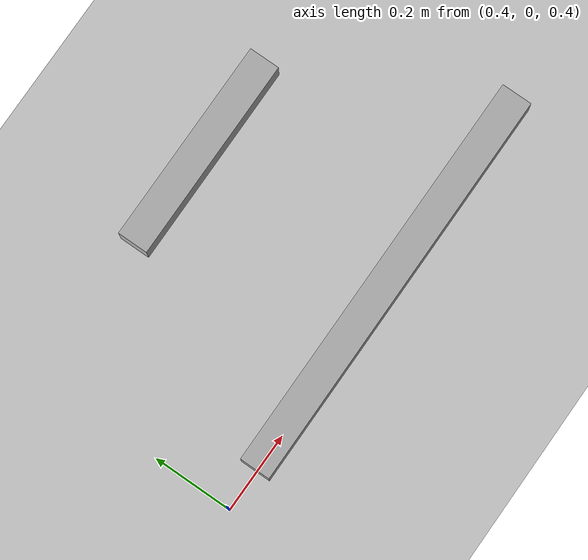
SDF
<sdf version="1.7">
  <world name="empty">
    <physics name="1ms" type="ignored">
      <max_step_size>0.001</max_step_size>
      <real_time_factor>1.0</real_time_factor>
    </physics>
    <plugin
      filename="gz-sim-physics-system"
      name="gz::sim::systems::Physics">
    </plugin>
    <plugin
      filename="gz-sim-user-commands-system"
      name="gz::sim::systems::UserCommands">
    </plugin>
    <plugin
      filename="gz-sim-scene-broadcaster-system"
      name="gz::sim::systems::SceneBroadcaster">
    </plugin>
    <plugin
      filename="gz-sim-sensors-system"
      name="gz::sim::systems::Sensors">
      <render_engine>ogre2</render_engine>
    </plugin>
    <plugin
      filename="gz-sim-contact-system"
      name="gz::sim::systems::Contact">
    </plugin>

    <light type="directional" name="sun">
      <cast_shadows>true</cast_shadows>
      <pose>0 0 10 0 0 0</pose>
      <diffuse>0.8 0.8 0.8 1</diffuse>
      <specular>0.2 0.2 0.2 1</specular>
      <attenuation>
        <range>1000</range>
        <constant>0.9</constant>
        <linear>0.01</linear>
        <quadratic>0.001</quadratic>
      </attenuation>
      <direction>-0.5 0.1 -0.9</direction>
    </light>

    <model name='ground_plane'>
      <static>true</static>
      <link name='link'>
        <collision name='collision'>
          <geometry>
            <plane>
              <normal>0 0 1</normal>
              <size>100 100</size>
            </plane>
          </geometry>
          <surface>
            <friction>
              <ode/>
            </friction>
            <bounce/>
            <contact/>
          </surface>
        </collision>
        <visual name='visual'>
          <geometry>
            <plane>
              <normal>0 0 1</normal>
              <size>100 100</size>
            </plane>
          </geometry>
          <material>
            <ambient>0.800000012 0.800000012 0.800000012 1</ambient>
            <diffuse>0.800000012 0.800000012 0.800000012 1</diffuse>
            <specular>0.800000012 0.800000012 0.800000012 1</specular>
          </material>
        </visual>
        <pose>0 0 0 0 0 0</pose>
        <inertial>
          <pose>0 0 0 0 0 0</pose>
          <mass>1</mass>
          <inertia>
            <ixx>1</ixx>
            <ixy>0</ixy>
            <ixz>0</ixz>
            <iyy>1</iyy>
            <iyz>0</iyz>
            <izz>1</izz>
          </inertia>
        </inertial>
        <enable_wind>false</enable_wind>
      </link>
      <pose>0 0 0 0 0 0</pose>
      <self_collide>false</self_collide>
    </model>

    <model name='box'>
      <pose>1.0 0.0 0.49999999990199806 6.2287739151293738e-22 9.3279666454713669e-22 -3.6315533669320137e-22</pose>
      <link name='box_link'>
        <inertial>
          <inertia>
            <ixx>0.16666</ixx>
            <ixy>0</ixy>
            <ixz>0</ixz>
            <iyy>0.16666</iyy>
            <iyz>0</iyz>
            <izz>0.16666</izz>
          </inertia>
          <mass>1</mass>
          <pose>0 0 0 0 0 0</pose>
        </inertial>
        <collision name='box_collision'>
          <geometry>
            <box>
              <size>1 0.075 0.075</size>
            </box>
          </geometry>
          <surface>
            <friction>
              <ode/>
            </friction>
            <bounce/>
            <contact/>
          </surface>
        </collision>
        <visual name='box_visual'>
          <geometry>
            <box>
              <size>1 0.075 0.075</size>
            </box>
          </geometry>
          <material>
            <ambient>0.300000012 0.300000012 0.300000012 1</ambient>
            <diffuse>0.699999988 0.699999988 0.699999988 1</diffuse>
            <specular>1 1 1 1</specular>
          </material>
        </visual>
        <pose>0 0 0 0 0 0</pose>
        <enable_wind>false</enable_wind>
      </link>
      <static>false</static>
      <self_collide>false</self_collide>
    </model>

    <model name='box_0'>
      <pose>1.0 0.50 0.49999999990199806 6.2287739151293738e-22 9.3279666454713669e-22 -3.6315533669320137e-22</pose>
      <link name='box_link_0'>
        <inertial>
          <inertia>
            <ixx>0.16666</ixx>
            <ixy>0</ixy>
            <ixz>0</ixz>
            <iyy>0.16666</iyy>
            <iyz>0</iyz>
            <izz>0.16666</izz>
          </inertia>
          <mass>1</mass>
          <pose>0 0 0 0 0 0</pose>
        </inertial>
        <collision name='box_collision'>
          <geometry>
            <box>
              <size>0.5 0.075 0.075</size>
            </box>
          </geometry>
          <surface>
            <friction>
              <ode/>
            </friction>
            <bounce/>
            <contact/>
          </surface>
        </collision>
        <visual name='box_visual'>
          <geometry>
            <box>
              <size>0.5 0.075 0.075</size>
            </box>
          </geometry>
          <material>
            <ambient>0.300000012 0.300000012 0.300000012 1</ambient>
            <diffuse>0.699999988 0.699999988 0.699999988 1</diffuse>
            <specular>1 1 1 1</specular>
          </material>
        </visual>
        <pose>0 0 0 0 0 0</pose>
        <enable_wind>false</enable_wind>
      </link>
      <static>false</static>
      <self_collide>false</self_collide>
    </model>
  </world>
</sdf>
